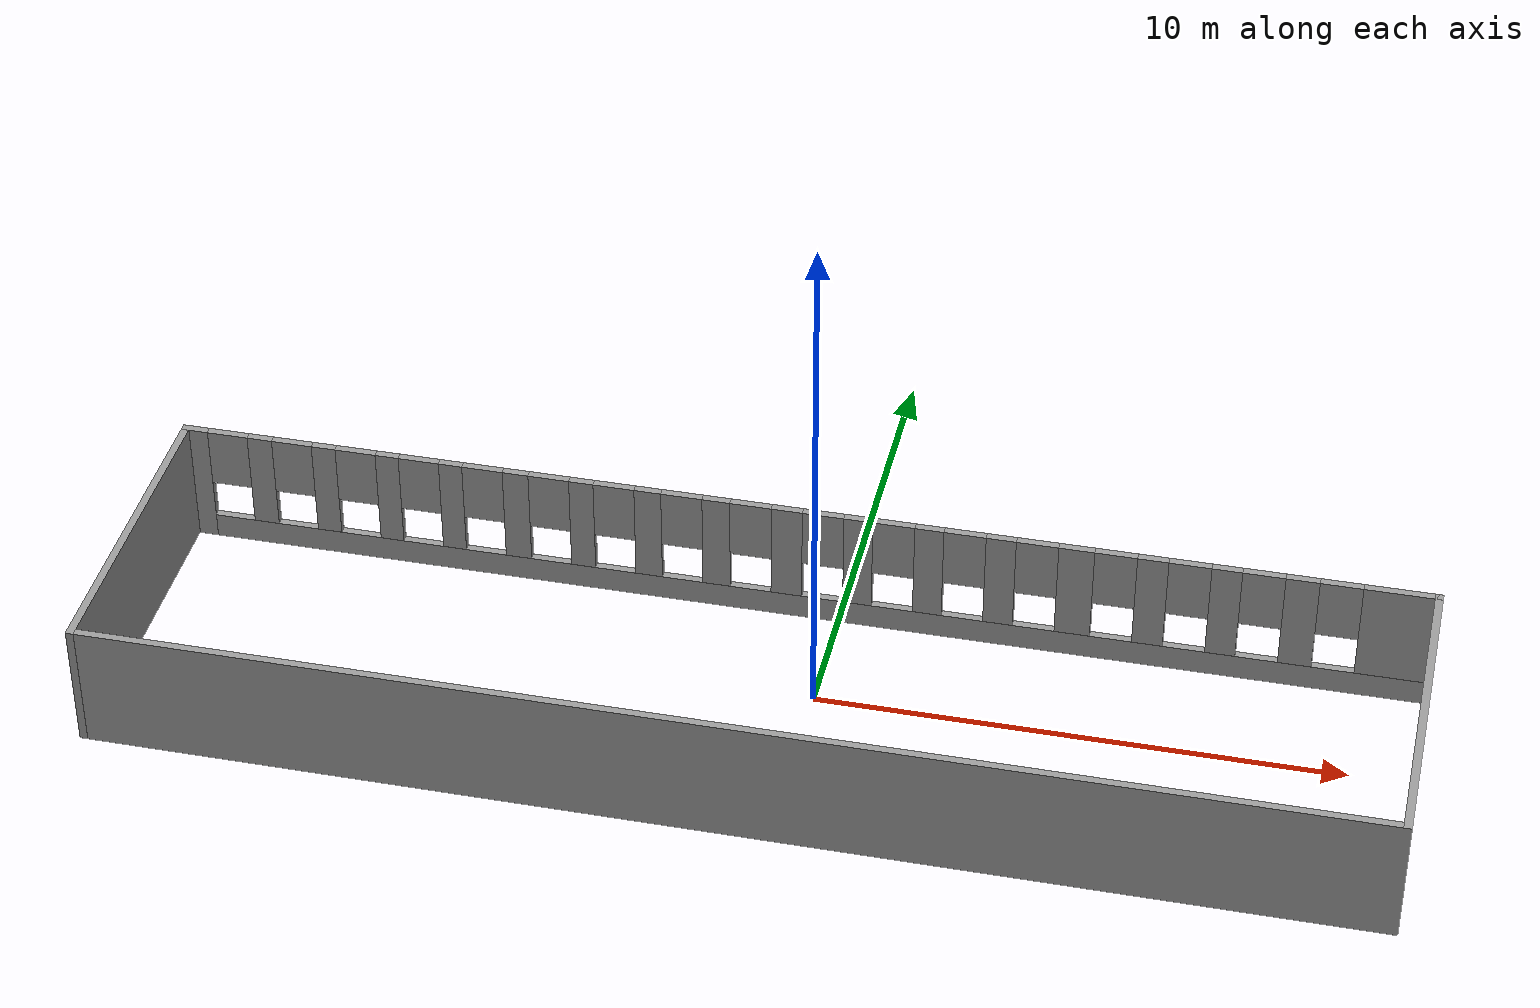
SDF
<?xml version='1.0'?>
<sdf version='1.7'>
  <model name='Bell427'>
    <pose>-0.870883 -0.774806 0 0 -0 0</pose>
    <link name='Wall_0'>
      <collision name='Wall_0_Collision'>
        <geometry>
          <box>
            <size>6.5 0.15 2.5</size>
          </box>
        </geometry>
        <pose>0 0 1.25 0 -0 0</pose>
      </collision>
      <visual name='Wall_0_Visual'>
        <pose>0 0 1.25 0 -0 0</pose>
        <geometry>
          <box>
            <size>6.5 0.15 2.5</size>
          </box>
        </geometry>
        <material>
          <script>
            <uri>file://media/materials/scripts/gazebo.material</uri>
            <name>Gazebo/Grey</name>
          </script>
          <ambient>1 1 1 1</ambient>
        </material>
        <meta>
          <layer>0</layer>
        </meta>
      </visual>
      <pose>-12.05 0 0 0 -0 1.5708</pose>
    </link>
    <link name='Wall_1'>
      <pose>-0 3.175 0 0 -0 0</pose>
      <visual name='Wall_1_Visual_0'>
        <pose>-11.8617 0 1.25 0 -0 0</pose>
        <geometry>
          <box>
            <size>0.52669 0.15 2.5</size>
          </box>
        </geometry>
        <material>
          <script>
            <uri>file://media/materials/scripts/gazebo.material</uri>
            <name>Gazebo/Grey</name>
          </script>
          <ambient>1 1 1 1</ambient>
        </material>
        <meta>
          <layer>0</layer>
        </meta>
      </visual>
      <collision name='Wall_1_Collision_0'>
        <geometry>
          <box>
            <size>0.52669 0.15 2.5</size>
          </box>
        </geometry>
        <pose>-11.8617 0 1.25 0 -0 0</pose>
      </collision>
      <visual name='Wall_1_Visual_1'>
        <pose>0.263345 0 0.25 0 -0 0</pose>
        <geometry>
          <box>
            <size>23.7233 0.15 0.5</size>
          </box>
        </geometry>
        <material>
          <script>
            <uri>file://media/materials/scripts/gazebo.material</uri>
            <name>Gazebo/Grey</name>
          </script>
          <ambient>1 1 1 1</ambient>
        </material>
        <meta>
          <layer>0</layer>
        </meta>
      </visual>
      <collision name='Wall_1_Collision_1'>
        <geometry>
          <box>
            <size>23.7233 0.15 0.5</size>
          </box>
        </geometry>
        <pose>0.263345 0 0.25 0 -0 0</pose>
      </collision>
      <visual name='Wall_1_Visual_2'>
        <pose>-10.5519 0 1.5 0 -0 0</pose>
        <geometry>
          <box>
            <size>0.492744 0.15 2</size>
          </box>
        </geometry>
        <material>
          <script>
            <uri>file://media/materials/scripts/gazebo.material</uri>
            <name>Gazebo/Grey</name>
          </script>
          <ambient>1 1 1 1</ambient>
        </material>
        <meta>
          <layer>0</layer>
        </meta>
      </visual>
      <collision name='Wall_1_Collision_2'>
        <geometry>
          <box>
            <size>0.492744 0.15 2</size>
          </box>
        </geometry>
        <pose>-10.5519 0 1.5 0 -0 0</pose>
      </collision>
      <visual name='Wall_1_Visual_3'>
        <pose>-9.2668 0 1.5 0 -0 0</pose>
        <geometry>
          <box>
            <size>0.477534 0.15 2</size>
          </box>
        </geometry>
        <material>
          <script>
            <uri>file://media/materials/scripts/gazebo.material</uri>
            <name>Gazebo/Grey</name>
          </script>
          <ambient>1 1 1 1</ambient>
        </material>
        <meta>
          <layer>0</layer>
        </meta>
      </visual>
      <collision name='Wall_1_Collision_3'>
        <geometry>
          <box>
            <size>0.477534 0.15 2</size>
          </box>
        </geometry>
        <pose>-9.2668 0 1.5 0 -0 0</pose>
      </collision>
      <visual name='Wall_1_Visual_4'>
        <pose>-7.99687 0 1.5 0 -0 0</pose>
        <geometry>
          <box>
            <size>0.462326 0.15 2</size>
          </box>
        </geometry>
        <material>
          <script>
            <uri>file://media/materials/scripts/gazebo.material</uri>
            <name>Gazebo/Grey</name>
          </script>
          <ambient>1 1 1 1</ambient>
        </material>
        <meta>
          <layer>0</layer>
        </meta>
      </visual>
      <collision name='Wall_1_Collision_4'>
        <geometry>
          <box>
            <size>0.462326 0.15 2</size>
          </box>
        </geometry>
        <pose>-7.99687 0 1.5 0 -0 0</pose>
      </collision>
      <visual name='Wall_1_Visual_5'>
        <pose>-6.73454 0 1.5 0 -0 0</pose>
        <geometry>
          <box>
            <size>0.462327 0.15 2</size>
          </box>
        </geometry>
        <material>
          <script>
            <uri>file://media/materials/scripts/gazebo.material</uri>
            <name>Gazebo/Grey</name>
          </script>
          <ambient>1 1 1 1</ambient>
        </material>
        <meta>
          <layer>0</layer>
        </meta>
      </visual>
      <collision name='Wall_1_Collision_5'>
        <geometry>
          <box>
            <size>0.462327 0.15 2</size>
          </box>
        </geometry>
        <pose>-6.73454 0 1.5 0 -0 0</pose>
      </collision>
      <visual name='Wall_1_Visual_6'>
        <pose>-5.4494 0 1.5 0 -0 0</pose>
        <geometry>
          <box>
            <size>0.507952 0.15 2</size>
          </box>
        </geometry>
        <material>
          <script>
            <uri>file://media/materials/scripts/gazebo.material</uri>
            <name>Gazebo/Grey</name>
          </script>
          <ambient>1 1 1 1</ambient>
        </material>
        <meta>
          <layer>0</layer>
        </meta>
      </visual>
      <collision name='Wall_1_Collision_6'>
        <geometry>
          <box>
            <size>0.507952 0.15 2</size>
          </box>
        </geometry>
        <pose>-5.4494 0 1.5 0 -0 0</pose>
      </collision>
      <visual name='Wall_1_Visual_7'>
        <pose>-4.15666 0 1.5 0 -0 0</pose>
        <geometry>
          <box>
            <size>0.477535 0.15 2</size>
          </box>
        </geometry>
        <material>
          <script>
            <uri>file://media/materials/scripts/gazebo.material</uri>
            <name>Gazebo/Grey</name>
          </script>
          <ambient>1 1 1 1</ambient>
        </material>
        <meta>
          <layer>0</layer>
        </meta>
      </visual>
      <collision name='Wall_1_Collision_7'>
        <geometry>
          <box>
            <size>0.477535 0.15 2</size>
          </box>
        </geometry>
        <pose>-4.15666 0 1.5 0 -0 0</pose>
      </collision>
      <visual name='Wall_1_Visual_8'>
        <pose>-2.85631 0 1.5 0 -0 0</pose>
        <geometry>
          <box>
            <size>0.523161 0.15 2</size>
          </box>
        </geometry>
        <material>
          <script>
            <uri>file://media/materials/scripts/gazebo.material</uri>
            <name>Gazebo/Grey</name>
          </script>
          <ambient>1 1 1 1</ambient>
        </material>
        <meta>
          <layer>0</layer>
        </meta>
      </visual>
      <collision name='Wall_1_Collision_8'>
        <geometry>
          <box>
            <size>0.523161 0.15 2</size>
          </box>
        </geometry>
        <pose>-2.85631 0 1.5 0 -0 0</pose>
      </collision>
      <visual name='Wall_1_Visual_9'>
        <pose>-1.52554 0 1.5 0 -0 0</pose>
        <geometry>
          <box>
            <size>0.53837 0.15 2</size>
          </box>
        </geometry>
        <material>
          <script>
            <uri>file://media/materials/scripts/gazebo.material</uri>
            <name>Gazebo/Grey</name>
          </script>
          <ambient>1 1 1 1</ambient>
        </material>
        <meta>
          <layer>0</layer>
        </meta>
      </visual>
      <collision name='Wall_1_Collision_9'>
        <geometry>
          <box>
            <size>0.53837 0.15 2</size>
          </box>
        </geometry>
        <pose>-1.52554 0 1.5 0 -0 0</pose>
      </collision>
      <visual name='Wall_1_Visual_10'>
        <pose>-0.156758 0 1.5 0 -0 0</pose>
        <geometry>
          <box>
            <size>0.599205 0.15 2</size>
          </box>
        </geometry>
        <material>
          <script>
            <uri>file://media/materials/scripts/gazebo.material</uri>
            <name>Gazebo/Grey</name>
          </script>
          <ambient>1 1 1 1</ambient>
        </material>
        <meta>
          <layer>0</layer>
        </meta>
      </visual>
      <collision name='Wall_1_Collision_10'>
        <geometry>
          <box>
            <size>0.599205 0.15 2</size>
          </box>
        </geometry>
        <pose>-0.156758 0 1.5 0 -0 0</pose>
      </collision>
      <visual name='Wall_1_Visual_11'>
        <pose>1.21963 0 1.5 0 -0 0</pose>
        <geometry>
          <box>
            <size>0.553579 0.15 2</size>
          </box>
        </geometry>
        <material>
          <script>
            <uri>file://media/materials/scripts/gazebo.material</uri>
            <name>Gazebo/Grey</name>
          </script>
          <ambient>1 1 1 1</ambient>
        </material>
        <meta>
          <layer>0</layer>
        </meta>
      </visual>
      <collision name='Wall_1_Collision_11'>
        <geometry>
          <box>
            <size>0.553579 0.15 2</size>
          </box>
        </geometry>
        <pose>1.21963 0 1.5 0 -0 0</pose>
      </collision>
      <visual name='Wall_1_Visual_12'>
        <pose>2.57321 0 1.5 0 -0 0</pose>
        <geometry>
          <box>
            <size>0.553579 0.15 2</size>
          </box>
        </geometry>
        <material>
          <script>
            <uri>file://media/materials/scripts/gazebo.material</uri>
            <name>Gazebo/Grey</name>
          </script>
          <ambient>1 1 1 1</ambient>
        </material>
        <meta>
          <layer>0</layer>
        </meta>
      </visual>
      <collision name='Wall_1_Collision_12'>
        <geometry>
          <box>
            <size>0.553579 0.15 2</size>
          </box>
        </geometry>
        <pose>2.57321 0 1.5 0 -0 0</pose>
      </collision>
      <visual name='Wall_1_Visual_13'>
        <pose>3.9344 0 1.5 0 -0 0</pose>
        <geometry>
          <box>
            <size>0.568788 0.15 2</size>
          </box>
        </geometry>
        <material>
          <script>
            <uri>file://media/materials/scripts/gazebo.material</uri>
            <name>Gazebo/Grey</name>
          </script>
          <ambient>1 1 1 1</ambient>
        </material>
        <meta>
          <layer>0</layer>
        </meta>
      </visual>
      <collision name='Wall_1_Collision_13'>
        <geometry>
          <box>
            <size>0.568788 0.15 2</size>
          </box>
        </geometry>
        <pose>3.9344 0 1.5 0 -0 0</pose>
      </collision>
      <visual name='Wall_1_Visual_14'>
        <pose>5.35641 0 1.5 0 -0 0</pose>
        <geometry>
          <box>
            <size>0.675249 0.15 2</size>
          </box>
        </geometry>
        <material>
          <script>
            <uri>file://media/materials/scripts/gazebo.material</uri>
            <name>Gazebo/Grey</name>
          </script>
          <ambient>1 1 1 1</ambient>
        </material>
        <meta>
          <layer>0</layer>
        </meta>
      </visual>
      <collision name='Wall_1_Collision_14'>
        <geometry>
          <box>
            <size>0.675249 0.15 2</size>
          </box>
        </geometry>
        <pose>5.35641 0 1.5 0 -0 0</pose>
      </collision>
      <visual name='Wall_1_Visual_15'>
        <pose>6.78604 0 1.5 0 -0 0</pose>
        <geometry>
          <box>
            <size>0.583996 0.15 2</size>
          </box>
        </geometry>
        <material>
          <script>
            <uri>file://media/materials/scripts/gazebo.material</uri>
            <name>Gazebo/Grey</name>
          </script>
          <ambient>1 1 1 1</ambient>
        </material>
        <meta>
          <layer>0</layer>
        </meta>
      </visual>
      <collision name='Wall_1_Collision_15'>
        <geometry>
          <box>
            <size>0.583996 0.15 2</size>
          </box>
        </geometry>
        <pose>6.78604 0 1.5 0 -0 0</pose>
      </collision>
      <visual name='Wall_1_Visual_16'>
        <pose>8.16243 0 1.5 0 -0 0</pose>
        <geometry>
          <box>
            <size>0.568787 0.15 2</size>
          </box>
        </geometry>
        <material>
          <script>
            <uri>file://media/materials/scripts/gazebo.material</uri>
            <name>Gazebo/Grey</name>
          </script>
          <ambient>1 1 1 1</ambient>
        </material>
        <meta>
          <layer>0</layer>
        </meta>
      </visual>
      <collision name='Wall_1_Collision_16'>
        <geometry>
          <box>
            <size>0.568787 0.15 2</size>
          </box>
        </geometry>
        <pose>8.16243 0 1.5 0 -0 0</pose>
      </collision>
      <visual name='Wall_1_Visual_17'>
        <pose>9.56163 0 1.5 0 -0 0</pose>
        <geometry>
          <box>
            <size>0.629622 0.15 2</size>
          </box>
        </geometry>
        <material>
          <script>
            <uri>file://media/materials/scripts/gazebo.material</uri>
            <name>Gazebo/Grey</name>
          </script>
          <ambient>1 1 1 1</ambient>
        </material>
        <meta>
          <layer>0</layer>
        </meta>
      </visual>
      <collision name='Wall_1_Collision_17'>
        <geometry>
          <box>
            <size>0.629622 0.15 2</size>
          </box>
        </geometry>
        <pose>9.56163 0 1.5 0 -0 0</pose>
      </collision>
      <visual name='Wall_1_Visual_18'>
        <pose>11.4007 0 1.5 0 -0 0</pose>
        <geometry>
          <box>
            <size>1.44856 0.15 2</size>
          </box>
        </geometry>
        <material>
          <script>
            <uri>file://media/materials/scripts/gazebo.material</uri>
            <name>Gazebo/Grey</name>
          </script>
          <ambient>1 1 1 1</ambient>
        </material>
        <meta>
          <layer>0</layer>
        </meta>
      </visual>
      <collision name='Wall_1_Collision_18'>
        <geometry>
          <box>
            <size>1.44856 0.15 2</size>
          </box>
        </geometry>
        <pose>11.4007 0 1.5 0 -0 0</pose>
      </collision>
      <visual name='Wall_1_Visual_19'>
        <pose>-11.1983 0 1.9 0 -0 0</pose>
        <geometry>
          <box>
            <size>0.8 0.15 1.2</size>
          </box>
        </geometry>
        <material>
          <script>
            <uri>file://media/materials/scripts/gazebo.material</uri>
            <name>Gazebo/Grey</name>
          </script>
          <ambient>1 1 1 1</ambient>
        </material>
        <meta>
          <layer>0</layer>
        </meta>
      </visual>
      <collision name='Wall_1_Collision_19'>
        <geometry>
          <box>
            <size>0.8 0.15 1.2</size>
          </box>
        </geometry>
        <pose>-11.1983 0 1.9 0 -0 0</pose>
      </collision>
      <visual name='Wall_1_Visual_20'>
        <pose>-9.90557 0 1.9 0 -0 0</pose>
        <geometry>
          <box>
            <size>0.8 0.15 1.2</size>
          </box>
        </geometry>
        <material>
          <script>
            <uri>file://media/materials/scripts/gazebo.material</uri>
            <name>Gazebo/Grey</name>
          </script>
          <ambient>1 1 1 1</ambient>
        </material>
        <meta>
          <layer>0</layer>
        </meta>
      </visual>
      <collision name='Wall_1_Collision_20'>
        <geometry>
          <box>
            <size>0.8 0.15 1.2</size>
          </box>
        </geometry>
        <pose>-9.90557 0 1.9 0 -0 0</pose>
      </collision>
      <visual name='Wall_1_Visual_21'>
        <pose>-8.62803 0 1.9 0 -0 0</pose>
        <geometry>
          <box>
            <size>0.8 0.15 1.2</size>
          </box>
        </geometry>
        <material>
          <script>
            <uri>file://media/materials/scripts/gazebo.material</uri>
            <name>Gazebo/Grey</name>
          </script>
          <ambient>1 1 1 1</ambient>
        </material>
        <meta>
          <layer>0</layer>
        </meta>
      </visual>
      <collision name='Wall_1_Collision_21'>
        <geometry>
          <box>
            <size>0.8 0.15 1.2</size>
          </box>
        </geometry>
        <pose>-8.62803 0 1.9 0 -0 0</pose>
      </collision>
      <visual name='Wall_1_Visual_22'>
        <pose>-7.36571 0 1.9 0 -0 0</pose>
        <geometry>
          <box>
            <size>0.8 0.15 1.2</size>
          </box>
        </geometry>
        <material>
          <script>
            <uri>file://media/materials/scripts/gazebo.material</uri>
            <name>Gazebo/Grey</name>
          </script>
          <ambient>1 1 1 1</ambient>
        </material>
        <meta>
          <layer>0</layer>
        </meta>
      </visual>
      <collision name='Wall_1_Collision_22'>
        <geometry>
          <box>
            <size>0.8 0.15 1.2</size>
          </box>
        </geometry>
        <pose>-7.36571 0 1.9 0 -0 0</pose>
      </collision>
      <visual name='Wall_1_Visual_23'>
        <pose>-6.10338 0 1.9 0 -0 0</pose>
        <geometry>
          <box>
            <size>0.8 0.15 1.2</size>
          </box>
        </geometry>
        <material>
          <script>
            <uri>file://media/materials/scripts/gazebo.material</uri>
            <name>Gazebo/Grey</name>
          </script>
          <ambient>1 1 1 1</ambient>
        </material>
        <meta>
          <layer>0</layer>
        </meta>
      </visual>
      <collision name='Wall_1_Collision_23'>
        <geometry>
          <box>
            <size>0.8 0.15 1.2</size>
          </box>
        </geometry>
        <pose>-6.10338 0 1.9 0 -0 0</pose>
      </collision>
      <visual name='Wall_1_Visual_24'>
        <pose>-4.79543 0 1.9 0 -0 0</pose>
        <geometry>
          <box>
            <size>0.8 0.15 1.2</size>
          </box>
        </geometry>
        <material>
          <script>
            <uri>file://media/materials/scripts/gazebo.material</uri>
            <name>Gazebo/Grey</name>
          </script>
          <ambient>1 1 1 1</ambient>
        </material>
        <meta>
          <layer>0</layer>
        </meta>
      </visual>
      <collision name='Wall_1_Collision_24'>
        <geometry>
          <box>
            <size>0.8 0.15 1.2</size>
          </box>
        </geometry>
        <pose>-4.79543 0 1.9 0 -0 0</pose>
      </collision>
      <visual name='Wall_1_Visual_25'>
        <pose>-3.51789 0 1.9 0 -0 0</pose>
        <geometry>
          <box>
            <size>0.8 0.15 1.2</size>
          </box>
        </geometry>
        <material>
          <script>
            <uri>file://media/materials/scripts/gazebo.material</uri>
            <name>Gazebo/Grey</name>
          </script>
          <ambient>1 1 1 1</ambient>
        </material>
        <meta>
          <layer>0</layer>
        </meta>
      </visual>
      <collision name='Wall_1_Collision_25'>
        <geometry>
          <box>
            <size>0.8 0.15 1.2</size>
          </box>
        </geometry>
        <pose>-3.51789 0 1.9 0 -0 0</pose>
      </collision>
      <visual name='Wall_1_Visual_26'>
        <pose>-2.19473 0 1.9 0 -0 0</pose>
        <geometry>
          <box>
            <size>0.8 0.15 1.2</size>
          </box>
        </geometry>
        <material>
          <script>
            <uri>file://media/materials/scripts/gazebo.material</uri>
            <name>Gazebo/Grey</name>
          </script>
          <ambient>1 1 1 1</ambient>
        </material>
        <meta>
          <layer>0</layer>
        </meta>
      </visual>
      <collision name='Wall_1_Collision_26'>
        <geometry>
          <box>
            <size>0.8 0.15 1.2</size>
          </box>
        </geometry>
        <pose>-2.19473 0 1.9 0 -0 0</pose>
      </collision>
      <visual name='Wall_1_Visual_27'>
        <pose>-0.85636 0 1.9 0 -0 0</pose>
        <geometry>
          <box>
            <size>0.8 0.15 1.2</size>
          </box>
        </geometry>
        <material>
          <script>
            <uri>file://media/materials/scripts/gazebo.material</uri>
            <name>Gazebo/Grey</name>
          </script>
          <ambient>1 1 1 1</ambient>
        </material>
        <meta>
          <layer>0</layer>
        </meta>
      </visual>
      <collision name='Wall_1_Collision_27'>
        <geometry>
          <box>
            <size>0.8 0.15 1.2</size>
          </box>
        </geometry>
        <pose>-0.85636 0 1.9 0 -0 0</pose>
      </collision>
      <visual name='Wall_1_Visual_28'>
        <pose>0.542845 0 1.9 0 -0 0</pose>
        <geometry>
          <box>
            <size>0.8 0.15 1.2</size>
          </box>
        </geometry>
        <material>
          <script>
            <uri>file://media/materials/scripts/gazebo.material</uri>
            <name>Gazebo/Grey</name>
          </script>
          <ambient>1 1 1 1</ambient>
        </material>
        <meta>
          <layer>0</layer>
        </meta>
      </visual>
      <collision name='Wall_1_Collision_28'>
        <geometry>
          <box>
            <size>0.8 0.15 1.2</size>
          </box>
        </geometry>
        <pose>0.542845 0 1.9 0 -0 0</pose>
      </collision>
      <visual name='Wall_1_Visual_29'>
        <pose>1.89642 0 1.9 0 -0 0</pose>
        <geometry>
          <box>
            <size>0.8 0.15 1.2</size>
          </box>
        </geometry>
        <material>
          <script>
            <uri>file://media/materials/scripts/gazebo.material</uri>
            <name>Gazebo/Grey</name>
          </script>
          <ambient>1 1 1 1</ambient>
        </material>
        <meta>
          <layer>0</layer>
        </meta>
      </visual>
      <collision name='Wall_1_Collision_29'>
        <geometry>
          <box>
            <size>0.8 0.15 1.2</size>
          </box>
        </geometry>
        <pose>1.89642 0 1.9 0 -0 0</pose>
      </collision>
      <visual name='Wall_1_Visual_30'>
        <pose>3.25 0 1.9 0 -0 0</pose>
        <geometry>
          <box>
            <size>0.8 0.15 1.2</size>
          </box>
        </geometry>
        <material>
          <script>
            <uri>file://media/materials/scripts/gazebo.material</uri>
            <name>Gazebo/Grey</name>
          </script>
          <ambient>1 1 1 1</ambient>
        </material>
        <meta>
          <layer>0</layer>
        </meta>
      </visual>
      <collision name='Wall_1_Collision_30'>
        <geometry>
          <box>
            <size>0.8 0.15 1.2</size>
          </box>
        </geometry>
        <pose>3.25 0 1.9 0 -0 0</pose>
      </collision>
      <visual name='Wall_1_Visual_31'>
        <pose>4.61879 0 1.9 0 -0 0</pose>
        <geometry>
          <box>
            <size>0.8 0.15 1.2</size>
          </box>
        </geometry>
        <material>
          <script>
            <uri>file://media/materials/scripts/gazebo.material</uri>
            <name>Gazebo/Grey</name>
          </script>
          <ambient>1 1 1 1</ambient>
        </material>
        <meta>
          <layer>0</layer>
        </meta>
      </visual>
      <collision name='Wall_1_Collision_31'>
        <geometry>
          <box>
            <size>0.8 0.15 1.2</size>
          </box>
        </geometry>
        <pose>4.61879 0 1.9 0 -0 0</pose>
      </collision>
      <visual name='Wall_1_Visual_32'>
        <pose>6.09404 0 1.9 0 -0 0</pose>
        <geometry>
          <box>
            <size>0.8 0.15 1.2</size>
          </box>
        </geometry>
        <material>
          <script>
            <uri>file://media/materials/scripts/gazebo.material</uri>
            <name>Gazebo/Grey</name>
          </script>
          <ambient>1 1 1 1</ambient>
        </material>
        <meta>
          <layer>0</layer>
        </meta>
      </visual>
      <collision name='Wall_1_Collision_32'>
        <geometry>
          <box>
            <size>0.8 0.15 1.2</size>
          </box>
        </geometry>
        <pose>6.09404 0 1.9 0 -0 0</pose>
      </collision>
      <visual name='Wall_1_Visual_33'>
        <pose>7.47804 0 1.9 0 -0 0</pose>
        <geometry>
          <box>
            <size>0.8 0.15 1.2</size>
          </box>
        </geometry>
        <material>
          <script>
            <uri>file://media/materials/scripts/gazebo.material</uri>
            <name>Gazebo/Grey</name>
          </script>
          <ambient>1 1 1 1</ambient>
        </material>
        <meta>
          <layer>0</layer>
        </meta>
      </visual>
      <collision name='Wall_1_Collision_33'>
        <geometry>
          <box>
            <size>0.8 0.15 1.2</size>
          </box>
        </geometry>
        <pose>7.47804 0 1.9 0 -0 0</pose>
      </collision>
      <visual name='Wall_1_Visual_34'>
        <pose>8.84682 0 1.9 0 -0 0</pose>
        <geometry>
          <box>
            <size>0.8 0.15 1.2</size>
          </box>
        </geometry>
        <material>
          <script>
            <uri>file://media/materials/scripts/gazebo.material</uri>
            <name>Gazebo/Grey</name>
          </script>
          <ambient>1 1 1 1</ambient>
        </material>
        <meta>
          <layer>0</layer>
        </meta>
      </visual>
      <collision name='Wall_1_Collision_34'>
        <geometry>
          <box>
            <size>0.8 0.15 1.2</size>
          </box>
        </geometry>
        <pose>8.84682 0 1.9 0 -0 0</pose>
      </collision>
      <visual name='Wall_1_Visual_35'>
        <pose>10.2764 0 1.9 0 -0 0</pose>
        <geometry>
          <box>
            <size>0.8 0.15 1.2</size>
          </box>
        </geometry>
        <material>
          <script>
            <uri>file://media/materials/scripts/gazebo.material</uri>
            <name>Gazebo/Grey</name>
          </script>
          <ambient>1 1 1 1</ambient>
        </material>
        <meta>
          <layer>0</layer>
        </meta>
      </visual>
      <collision name='Wall_1_Collision_35'>
        <geometry>
          <box>
            <size>0.8 0.15 1.2</size>
          </box>
        </geometry>
        <pose>10.2764 0 1.9 0 -0 0</pose>
      </collision>
    </link>
    <link name='Wall_2'>
      <collision name='Wall_2_Collision'>
        <geometry>
          <box>
            <size>6.5 0.15 2.5</size>
          </box>
        </geometry>
        <pose>0 0 1.25 0 -0 0</pose>
      </collision>
      <visual name='Wall_2_Visual'>
        <pose>0 0 1.25 0 -0 0</pose>
        <geometry>
          <box>
            <size>6.5 0.15 2.5</size>
          </box>
        </geometry>
        <material>
          <script>
            <uri>file://media/materials/scripts/gazebo.material</uri>
            <name>Gazebo/Grey</name>
          </script>
          <ambient>1 1 1 1</ambient>
        </material>
        <meta>
          <layer>0</layer>
        </meta>
      </visual>
      <pose>12.05 0 0 0 -0 -1.5708</pose>
    </link>
    <link name='Wall_3'>
      <collision name='Wall_3_Collision'>
        <geometry>
          <box>
            <size>24.25 0.15 2.5</size>
          </box>
        </geometry>
        <pose>0 0 1.25 0 -0 0</pose>
      </collision>
      <visual name='Wall_3_Visual'>
        <pose>0 0 1.25 0 -0 0</pose>
        <geometry>
          <box>
            <size>24.25 0.15 2.5</size>
          </box>
        </geometry>
        <material>
          <script>
            <uri>file://media/materials/scripts/gazebo.material</uri>
            <name>Gazebo/Grey</name>
          </script>
          <ambient>1 1 1 1</ambient>
        </material>
        <meta>
          <layer>0</layer>
        </meta>
      </visual>
      <pose>-0 -3.175 0 0 -0 3.14159</pose>
    </link>
    <static>1</static>
  </model>
</sdf>
